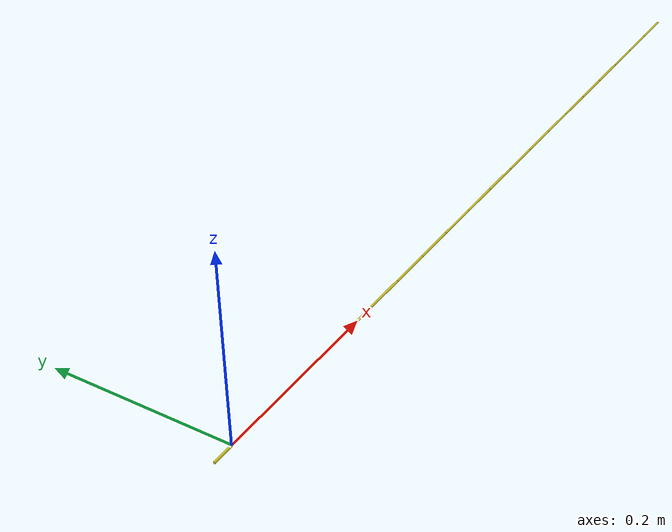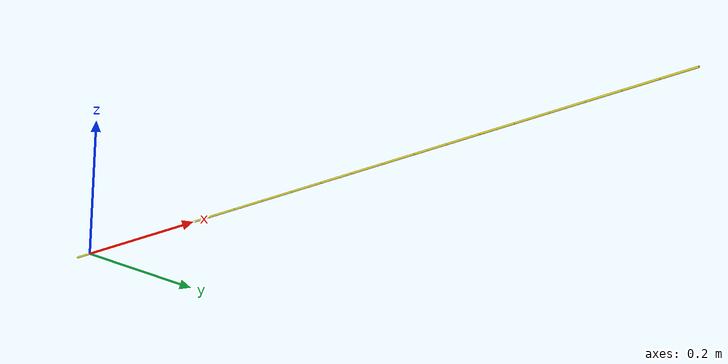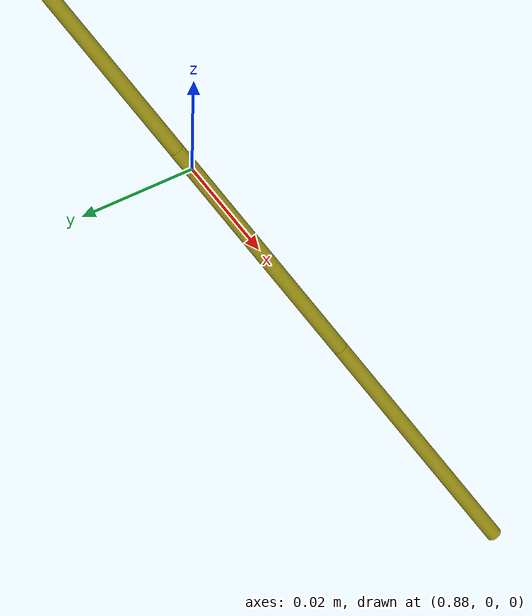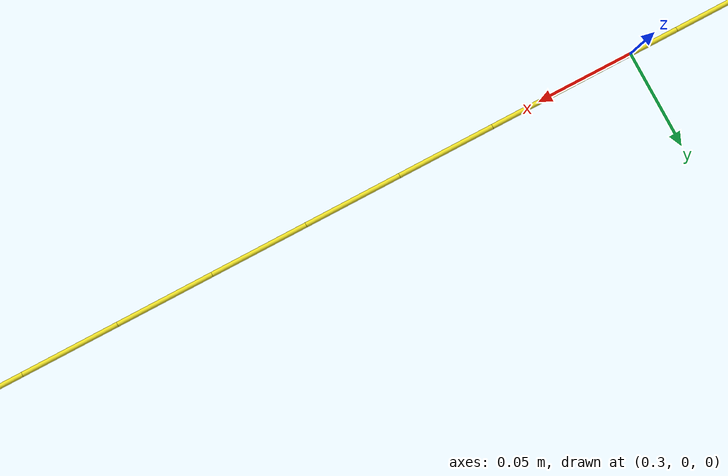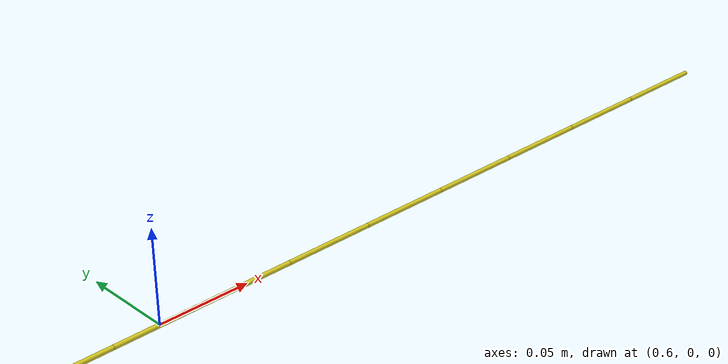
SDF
<?xml version="1.0" ?>
<sdf version="1.5">
<model name="sample">
<static> 0 </static>
<link name = "link_0" >
<pose>0.0	0.0	0.0	0.0	0.0	0.0	</pose>

      <inertial>
        <pose>0 0 0 0 -0 0</pose>
        <mass>0.005</mass>
        <inertia>
          <ixx>0.0001</ixx>
          <ixy>0.0</ixy>
          <ixz>0.0</ixz>
          <iyy>0.0001</iyy>
          <iyz>0.0</iyz>
          <izz>0.0001</izz>
        </inertia>
      </inertial>
      <visual name='link_0_vis'>
        <pose>0 0 0 0.0 1.57079 0</pose>
        <geometry>
          <cylinder>
            <length>0.05</length>
            <radius>0.00125</radius>
          </cylinder>
        </geometry>
        <material>
          <shader type='pixel'/>
          <script>
            <uri>file://media/materials/scripts/gazebo.material</uri>
            <name>Gazebo/Yellow</name>
          </script>
        </material>
        <transparency>0</transparency>
        <cast_shadows>1</cast_shadows>
      </visual>
      <collision name='link_0_collision'>
        <laser_retro>0</laser_retro>
        <max_contacts>10</max_contacts>
        <pose>0  0 0 0.0 1.57079 0</pose>
        <geometry>
          <cylinder>
            <length>0.05</length>
            <radius>0.00125</radius>
          </cylinder>
        </geometry>
      </collision>
    </link>
<link name = "link_1" >
<pose>0.05	0.0	0.0	0.0	0.0	0.0	</pose>

      <inertial>
        <pose>0 0 0 0 -0 0</pose>
        <mass>0.005</mass>
        <inertia>
          <ixx>0.0001</ixx>
          <ixy>0.0</ixy>
          <ixz>0.0</ixz>
          <iyy>0.0001</iyy>
          <iyz>0.0</iyz>
          <izz>0.0001</izz>
        </inertia>
      </inertial>
      <visual name='link_1_vis'>
        <pose>0 0 0 0.0 1.57079 0</pose>
        <geometry>
          <cylinder>
            <length>0.05</length>
            <radius>0.00125</radius>
          </cylinder>
        </geometry>
        <material>
          <shader type='pixel'/>
          <script>
            <uri>file://media/materials/scripts/gazebo.material</uri>
            <name>Gazebo/Yellow</name>
          </script>
        </material>
        <transparency>0</transparency>
        <cast_shadows>1</cast_shadows>
      </visual>
      <collision name='link_1_collision'>
        <laser_retro>0</laser_retro>
        <max_contacts>10</max_contacts>
        <pose>0  0 0 0.0 1.57079 0</pose>
        <geometry>
          <cylinder>
            <length>0.05</length>
            <radius>0.00125</radius>
          </cylinder>
        </geometry>
      </collision>
    </link>
<joint name='joint_0' type='universal'>
<parent>link_0</parent>
<child>link_1</child>
<pose>-0.025	0.0	0.0	0.0	0.0	0.0	</pose>
<axis>
        <xyz>0 1 0</xyz>
        <dynamics>
          <spring_reference>0</spring_reference>
          <spring_stiffness>0</spring_stiffness>
          <damping>0.01</damping>
          <friction>0</friction>
        </dynamics>
      </axis>
      <axis2>
        <xyz>0 0 1</xyz>
        <dynamics>
          <spring_reference>0</spring_reference>
          <spring_stiffness>0</spring_stiffness>
          <damping>0.01</damping>
          <friction>0</friction>
        </dynamics>
      </axis2>
      <physics>
        <ode>
          <limit>
            <cfm>0</cfm>
            <erp>0.2</erp>
          </limit>
          <suspension>
            <cfm>0</cfm>
            <erp>0.2</erp>
          </suspension>
        </ode>
      </physics>
    </joint>
<link name = "link_2" >
<pose>0.1	0.0	0.0	0.0	0.0	0.0	</pose>

      <inertial>
        <pose>0 0 0 0 -0 0</pose>
        <mass>0.005</mass>
        <inertia>
          <ixx>0.0001</ixx>
          <ixy>0.0</ixy>
          <ixz>0.0</ixz>
          <iyy>0.0001</iyy>
          <iyz>0.0</iyz>
          <izz>0.0001</izz>
        </inertia>
      </inertial>
      <visual name='link_2_vis'>
        <pose>0 0 0 0.0 1.57079 0</pose>
        <geometry>
          <cylinder>
            <length>0.05</length>
            <radius>0.00125</radius>
          </cylinder>
        </geometry>
        <material>
          <shader type='pixel'/>
          <script>
            <uri>file://media/materials/scripts/gazebo.material</uri>
            <name>Gazebo/Yellow</name>
          </script>
        </material>
        <transparency>0</transparency>
        <cast_shadows>1</cast_shadows>
      </visual>
      <collision name='link_2_collision'>
        <laser_retro>0</laser_retro>
        <max_contacts>10</max_contacts>
        <pose>0  0 0 0.0 1.57079 0</pose>
        <geometry>
          <cylinder>
            <length>0.05</length>
            <radius>0.00125</radius>
          </cylinder>
        </geometry>
      </collision>
    </link>
<joint name='joint_1' type='universal'>
<parent>link_1</parent>
<child>link_2</child>
<pose>-0.025	0.0	0.0	0.0	0.0	0.0	</pose>
<axis>
        <xyz>0 1 0</xyz>
        <dynamics>
          <spring_reference>0</spring_reference>
          <spring_stiffness>0</spring_stiffness>
          <damping>0.01</damping>
          <friction>0</friction>
        </dynamics>
      </axis>
      <axis2>
        <xyz>0 0 1</xyz>
        <dynamics>
          <spring_reference>0</spring_reference>
          <spring_stiffness>0</spring_stiffness>
          <damping>0.01</damping>
          <friction>0</friction>
        </dynamics>
      </axis2>
      <physics>
        <ode>
          <limit>
            <cfm>0</cfm>
            <erp>0.2</erp>
          </limit>
          <suspension>
            <cfm>0</cfm>
            <erp>0.2</erp>
          </suspension>
        </ode>
      </physics>
    </joint>
<link name = "link_3" >
<pose>0.15000000000000002	0.0	0.0	0.0	0.0	0.0	</pose>

      <inertial>
        <pose>0 0 0 0 -0 0</pose>
        <mass>0.005</mass>
        <inertia>
          <ixx>0.0001</ixx>
          <ixy>0.0</ixy>
          <ixz>0.0</ixz>
          <iyy>0.0001</iyy>
          <iyz>0.0</iyz>
          <izz>0.0001</izz>
        </inertia>
      </inertial>
      <visual name='link_3_vis'>
        <pose>0 0 0 0.0 1.57079 0</pose>
        <geometry>
          <cylinder>
            <length>0.05</length>
            <radius>0.00125</radius>
          </cylinder>
        </geometry>
        <material>
          <shader type='pixel'/>
          <script>
            <uri>file://media/materials/scripts/gazebo.material</uri>
            <name>Gazebo/Yellow</name>
          </script>
        </material>
        <transparency>0</transparency>
        <cast_shadows>1</cast_shadows>
      </visual>
      <collision name='link_3_collision'>
        <laser_retro>0</laser_retro>
        <max_contacts>10</max_contacts>
        <pose>0  0 0 0.0 1.57079 0</pose>
        <geometry>
          <cylinder>
            <length>0.05</length>
            <radius>0.00125</radius>
          </cylinder>
        </geometry>
      </collision>
    </link>
<joint name='joint_2' type='universal'>
<parent>link_2</parent>
<child>link_3</child>
<pose>-0.025	0.0	0.0	0.0	0.0	0.0	</pose>
<axis>
        <xyz>0 1 0</xyz>
        <dynamics>
          <spring_reference>0</spring_reference>
          <spring_stiffness>0</spring_stiffness>
          <damping>0.01</damping>
          <friction>0</friction>
        </dynamics>
      </axis>
      <axis2>
        <xyz>0 0 1</xyz>
        <dynamics>
          <spring_reference>0</spring_reference>
          <spring_stiffness>0</spring_stiffness>
          <damping>0.01</damping>
          <friction>0</friction>
        </dynamics>
      </axis2>
      <physics>
        <ode>
          <limit>
            <cfm>0</cfm>
            <erp>0.2</erp>
          </limit>
          <suspension>
            <cfm>0</cfm>
            <erp>0.2</erp>
          </suspension>
        </ode>
      </physics>
    </joint>
<link name = "link_4" >
<pose>0.2	0.0	0.0	0.0	0.0	0.0	</pose>

      <inertial>
        <pose>0 0 0 0 -0 0</pose>
        <mass>0.005</mass>
        <inertia>
          <ixx>0.0001</ixx>
          <ixy>0.0</ixy>
          <ixz>0.0</ixz>
          <iyy>0.0001</iyy>
          <iyz>0.0</iyz>
          <izz>0.0001</izz>
        </inertia>
      </inertial>
      <visual name='link_4_vis'>
        <pose>0 0 0 0.0 1.57079 0</pose>
        <geometry>
          <cylinder>
            <length>0.05</length>
            <radius>0.00125</radius>
          </cylinder>
        </geometry>
        <material>
          <shader type='pixel'/>
          <script>
            <uri>file://media/materials/scripts/gazebo.material</uri>
            <name>Gazebo/Yellow</name>
          </script>
        </material>
        <transparency>0</transparency>
        <cast_shadows>1</cast_shadows>
      </visual>
      <collision name='link_4_collision'>
        <laser_retro>0</laser_retro>
        <max_contacts>10</max_contacts>
        <pose>0  0 0 0.0 1.57079 0</pose>
        <geometry>
          <cylinder>
            <length>0.05</length>
            <radius>0.00125</radius>
          </cylinder>
        </geometry>
      </collision>
    </link>
<joint name='joint_3' type='universal'>
<parent>link_3</parent>
<child>link_4</child>
<pose>-0.025	0.0	0.0	0.0	0.0	0.0	</pose>
<axis>
        <xyz>0 1 0</xyz>
        <dynamics>
          <spring_reference>0</spring_reference>
          <spring_stiffness>0</spring_stiffness>
          <damping>0.01</damping>
          <friction>0</friction>
        </dynamics>
      </axis>
      <axis2>
        <xyz>0 0 1</xyz>
        <dynamics>
          <spring_reference>0</spring_reference>
          <spring_stiffness>0</spring_stiffness>
          <damping>0.01</damping>
          <friction>0</friction>
        </dynamics>
      </axis2>
      <physics>
        <ode>
          <limit>
            <cfm>0</cfm>
            <erp>0.2</erp>
          </limit>
          <suspension>
            <cfm>0</cfm>
            <erp>0.2</erp>
          </suspension>
        </ode>
      </physics>
    </joint>
<link name = "link_5" >
<pose>0.25	0.0	0.0	0.0	0.0	0.0	</pose>

      <inertial>
        <pose>0 0 0 0 -0 0</pose>
        <mass>0.005</mass>
        <inertia>
          <ixx>0.0001</ixx>
          <ixy>0.0</ixy>
          <ixz>0.0</ixz>
          <iyy>0.0001</iyy>
          <iyz>0.0</iyz>
          <izz>0.0001</izz>
        </inertia>
      </inertial>
      <visual name='link_5_vis'>
        <pose>0 0 0 0.0 1.57079 0</pose>
        <geometry>
          <cylinder>
            <length>0.05</length>
            <radius>0.00125</radius>
          </cylinder>
        </geometry>
        <material>
          <shader type='pixel'/>
          <script>
            <uri>file://media/materials/scripts/gazebo.material</uri>
            <name>Gazebo/Yellow</name>
          </script>
        </material>
        <transparency>0</transparency>
        <cast_shadows>1</cast_shadows>
      </visual>
      <collision name='link_5_collision'>
        <laser_retro>0</laser_retro>
        <max_contacts>10</max_contacts>
        <pose>0  0 0 0.0 1.57079 0</pose>
        <geometry>
          <cylinder>
            <length>0.05</length>
            <radius>0.00125</radius>
          </cylinder>
        </geometry>
      </collision>
    </link>
<joint name='joint_4' type='universal'>
<parent>link_4</parent>
<child>link_5</child>
<pose>-0.025	0.0	0.0	0.0	0.0	0.0	</pose>
<axis>
        <xyz>0 1 0</xyz>
        <dynamics>
          <spring_reference>0</spring_reference>
          <spring_stiffness>0</spring_stiffness>
          <damping>0.01</damping>
          <friction>0</friction>
        </dynamics>
      </axis>
      <axis2>
        <xyz>0 0 1</xyz>
        <dynamics>
          <spring_reference>0</spring_reference>
          <spring_stiffness>0</spring_stiffness>
          <damping>0.01</damping>
          <friction>0</friction>
        </dynamics>
      </axis2>
      <physics>
        <ode>
          <limit>
            <cfm>0</cfm>
            <erp>0.2</erp>
          </limit>
          <suspension>
            <cfm>0</cfm>
            <erp>0.2</erp>
          </suspension>
        </ode>
      </physics>
    </joint>
<link name = "link_6" >
<pose>0.30000000000000004	0.0	0.0	0.0	0.0	0.0	</pose>

      <inertial>
        <pose>0 0 0 0 -0 0</pose>
        <mass>0.005</mass>
        <inertia>
          <ixx>0.0001</ixx>
          <ixy>0.0</ixy>
          <ixz>0.0</ixz>
          <iyy>0.0001</iyy>
          <iyz>0.0</iyz>
          <izz>0.0001</izz>
        </inertia>
      </inertial>
      <visual name='link_6_vis'>
        <pose>0 0 0 0.0 1.57079 0</pose>
        <geometry>
          <cylinder>
            <length>0.05</length>
            <radius>0.00125</radius>
          </cylinder>
        </geometry>
        <material>
          <shader type='pixel'/>
          <script>
            <uri>file://media/materials/scripts/gazebo.material</uri>
            <name>Gazebo/Yellow</name>
          </script>
        </material>
        <transparency>0</transparency>
        <cast_shadows>1</cast_shadows>
      </visual>
      <collision name='link_6_collision'>
        <laser_retro>0</laser_retro>
        <max_contacts>10</max_contacts>
        <pose>0  0 0 0.0 1.57079 0</pose>
        <geometry>
          <cylinder>
            <length>0.05</length>
            <radius>0.00125</radius>
          </cylinder>
        </geometry>
      </collision>
    </link>
<joint name='joint_5' type='universal'>
<parent>link_5</parent>
<child>link_6</child>
<pose>-0.025	0.0	0.0	0.0	0.0	0.0	</pose>
<axis>
        <xyz>0 1 0</xyz>
        <dynamics>
          <spring_reference>0</spring_reference>
          <spring_stiffness>0</spring_stiffness>
          <damping>0.01</damping>
          <friction>0</friction>
        </dynamics>
      </axis>
      <axis2>
        <xyz>0 0 1</xyz>
        <dynamics>
          <spring_reference>0</spring_reference>
          <spring_stiffness>0</spring_stiffness>
          <damping>0.01</damping>
          <friction>0</friction>
        </dynamics>
      </axis2>
      <physics>
        <ode>
          <limit>
            <cfm>0</cfm>
            <erp>0.2</erp>
          </limit>
          <suspension>
            <cfm>0</cfm>
            <erp>0.2</erp>
          </suspension>
        </ode>
      </physics>
    </joint>
<link name = "link_7" >
<pose>0.35000000000000003	0.0	0.0	0.0	0.0	0.0	</pose>

      <inertial>
        <pose>0 0 0 0 -0 0</pose>
        <mass>0.005</mass>
        <inertia>
          <ixx>0.0001</ixx>
          <ixy>0.0</ixy>
          <ixz>0.0</ixz>
          <iyy>0.0001</iyy>
          <iyz>0.0</iyz>
          <izz>0.0001</izz>
        </inertia>
      </inertial>
      <visual name='link_7_vis'>
        <pose>0 0 0 0.0 1.57079 0</pose>
        <geometry>
          <cylinder>
            <length>0.05</length>
            <radius>0.00125</radius>
          </cylinder>
        </geometry>
        <material>
          <shader type='pixel'/>
          <script>
            <uri>file://media/materials/scripts/gazebo.material</uri>
            <name>Gazebo/Yellow</name>
          </script>
        </material>
        <transparency>0</transparency>
        <cast_shadows>1</cast_shadows>
      </visual>
      <collision name='link_7_collision'>
        <laser_retro>0</laser_retro>
        <max_contacts>10</max_contacts>
        <pose>0  0 0 0.0 1.57079 0</pose>
        <geometry>
          <cylinder>
            <length>0.05</length>
            <radius>0.00125</radius>
          </cylinder>
        </geometry>
      </collision>
    </link>
<joint name='joint_6' type='universal'>
<parent>link_6</parent>
<child>link_7</child>
<pose>-0.025	0.0	0.0	0.0	0.0	0.0	</pose>
<axis>
        <xyz>0 1 0</xyz>
        <dynamics>
          <spring_reference>0</spring_reference>
          <spring_stiffness>0</spring_stiffness>
          <damping>0.01</damping>
          <friction>0</friction>
        </dynamics>
      </axis>
      <axis2>
        <xyz>0 0 1</xyz>
        <dynamics>
          <spring_reference>0</spring_reference>
          <spring_stiffness>0</spring_stiffness>
          <damping>0.01</damping>
          <friction>0</friction>
        </dynamics>
      </axis2>
      <physics>
        <ode>
          <limit>
            <cfm>0</cfm>
            <erp>0.2</erp>
          </limit>
          <suspension>
            <cfm>0</cfm>
            <erp>0.2</erp>
          </suspension>
        </ode>
      </physics>
    </joint>
<link name = "link_8" >
<pose>0.4	0.0	0.0	0.0	0.0	0.0	</pose>

      <inertial>
        <pose>0 0 0 0 -0 0</pose>
        <mass>0.005</mass>
        <inertia>
          <ixx>0.0001</ixx>
          <ixy>0.0</ixy>
          <ixz>0.0</ixz>
          <iyy>0.0001</iyy>
          <iyz>0.0</iyz>
          <izz>0.0001</izz>
        </inertia>
      </inertial>
      <visual name='link_8_vis'>
        <pose>0 0 0 0.0 1.57079 0</pose>
        <geometry>
          <cylinder>
            <length>0.05</length>
            <radius>0.00125</radius>
          </cylinder>
        </geometry>
        <material>
          <shader type='pixel'/>
          <script>
            <uri>file://media/materials/scripts/gazebo.material</uri>
            <name>Gazebo/Yellow</name>
          </script>
        </material>
        <transparency>0</transparency>
        <cast_shadows>1</cast_shadows>
      </visual>
      <collision name='link_8_collision'>
        <laser_retro>0</laser_retro>
        <max_contacts>10</max_contacts>
        <pose>0  0 0 0.0 1.57079 0</pose>
        <geometry>
          <cylinder>
            <length>0.05</length>
            <radius>0.00125</radius>
          </cylinder>
        </geometry>
      </collision>
    </link>
<joint name='joint_7' type='universal'>
<parent>link_7</parent>
<child>link_8</child>
<pose>-0.025	0.0	0.0	0.0	0.0	0.0	</pose>
<axis>
        <xyz>0 1 0</xyz>
        <dynamics>
          <spring_reference>0</spring_reference>
          <spring_stiffness>0</spring_stiffness>
          <damping>0.01</damping>
          <friction>0</friction>
        </dynamics>
      </axis>
      <axis2>
        <xyz>0 0 1</xyz>
        <dynamics>
          <spring_reference>0</spring_reference>
          <spring_stiffness>0</spring_stiffness>
          <damping>0.01</damping>
          <friction>0</friction>
        </dynamics>
      </axis2>
      <physics>
        <ode>
          <limit>
            <cfm>0</cfm>
            <erp>0.2</erp>
          </limit>
          <suspension>
            <cfm>0</cfm>
            <erp>0.2</erp>
          </suspension>
        </ode>
      </physics>
    </joint>
<link name = "link_9" >
<pose>0.45	0.0	0.0	0.0	0.0	0.0	</pose>

      <inertial>
        <pose>0 0 0 0 -0 0</pose>
        <mass>0.005</mass>
        <inertia>
          <ixx>0.0001</ixx>
          <ixy>0.0</ixy>
          <ixz>0.0</ixz>
          <iyy>0.0001</iyy>
          <iyz>0.0</iyz>
          <izz>0.0001</izz>
        </inertia>
      </inertial>
      <visual name='link_9_vis'>
        <pose>0 0 0 0.0 1.57079 0</pose>
        <geometry>
          <cylinder>
            <length>0.05</length>
            <radius>0.00125</radius>
          </cylinder>
        </geometry>
        <material>
          <shader type='pixel'/>
          <script>
            <uri>file://media/materials/scripts/gazebo.material</uri>
            <name>Gazebo/Yellow</name>
          </script>
        </material>
        <transparency>0</transparency>
        <cast_shadows>1</cast_shadows>
      </visual>
      <collision name='link_9_collision'>
        <laser_retro>0</laser_retro>
        <max_contacts>10</max_contacts>
        <pose>0  0 0 0.0 1.57079 0</pose>
        <geometry>
          <cylinder>
            <length>0.05</length>
            <radius>0.00125</radius>
          </cylinder>
        </geometry>
      </collision>
    </link>
<joint name='joint_8' type='universal'>
<parent>link_8</parent>
<child>link_9</child>
<pose>-0.025	0.0	0.0	0.0	0.0	0.0	</pose>
<axis>
        <xyz>0 1 0</xyz>
        <dynamics>
          <spring_reference>0</spring_reference>
          <spring_stiffness>0</spring_stiffness>
          <damping>0.01</damping>
          <friction>0</friction>
        </dynamics>
      </axis>
      <axis2>
        <xyz>0 0 1</xyz>
        <dynamics>
          <spring_reference>0</spring_reference>
          <spring_stiffness>0</spring_stiffness>
          <damping>0.01</damping>
          <friction>0</friction>
        </dynamics>
      </axis2>
      <physics>
        <ode>
          <limit>
            <cfm>0</cfm>
            <erp>0.2</erp>
          </limit>
          <suspension>
            <cfm>0</cfm>
            <erp>0.2</erp>
          </suspension>
        </ode>
      </physics>
    </joint>
<link name = "link_10" >
<pose>0.5	0.0	0.0	0.0	0.0	0.0	</pose>

      <inertial>
        <pose>0 0 0 0 -0 0</pose>
        <mass>0.005</mass>
        <inertia>
          <ixx>0.0001</ixx>
          <ixy>0.0</ixy>
          <ixz>0.0</ixz>
          <iyy>0.0001</iyy>
          <iyz>0.0</iyz>
          <izz>0.0001</izz>
        </inertia>
      </inertial>
      <visual name='link_10_vis'>
        <pose>0 0 0 0.0 1.57079 0</pose>
        <geometry>
          <cylinder>
            <length>0.05</length>
            <radius>0.00125</radius>
          </cylinder>
        </geometry>
        <material>
          <shader type='pixel'/>
          <script>
            <uri>file://media/materials/scripts/gazebo.material</uri>
            <name>Gazebo/Yellow</name>
          </script>
        </material>
        <transparency>0</transparency>
        <cast_shadows>1</cast_shadows>
      </visual>
      <collision name='link_10_collision'>
        <laser_retro>0</laser_retro>
        <max_contacts>10</max_contacts>
        <pose>0  0 0 0.0 1.57079 0</pose>
        <geometry>
          <cylinder>
            <length>0.05</length>
            <radius>0.00125</radius>
          </cylinder>
        </geometry>
      </collision>
    </link>
<joint name='joint_9' type='universal'>
<parent>link_9</parent>
<child>link_10</child>
<pose>-0.025	0.0	0.0	0.0	0.0	0.0	</pose>
<axis>
        <xyz>0 1 0</xyz>
        <dynamics>
          <spring_reference>0</spring_reference>
          <spring_stiffness>0</spring_stiffness>
          <damping>0.01</damping>
          <friction>0</friction>
        </dynamics>
      </axis>
      <axis2>
        <xyz>0 0 1</xyz>
        <dynamics>
          <spring_reference>0</spring_reference>
          <spring_stiffness>0</spring_stiffness>
          <damping>0.01</damping>
          <friction>0</friction>
        </dynamics>
      </axis2>
      <physics>
        <ode>
          <limit>
            <cfm>0</cfm>
            <erp>0.2</erp>
          </limit>
          <suspension>
            <cfm>0</cfm>
            <erp>0.2</erp>
          </suspension>
        </ode>
      </physics>
    </joint>
<link name = "link_11" >
<pose>0.55	0.0	0.0	0.0	0.0	0.0	</pose>

      <inertial>
        <pose>0 0 0 0 -0 0</pose>
        <mass>0.005</mass>
        <inertia>
          <ixx>0.0001</ixx>
          <ixy>0.0</ixy>
          <ixz>0.0</ixz>
          <iyy>0.0001</iyy>
          <iyz>0.0</iyz>
          <izz>0.0001</izz>
        </inertia>
      </inertial>
      <visual name='link_11_vis'>
        <pose>0 0 0 0.0 1.57079 0</pose>
        <geometry>
          <cylinder>
            <length>0.05</length>
            <radius>0.00125</radius>
          </cylinder>
        </geometry>
        <material>
          <shader type='pixel'/>
          <script>
            <uri>file://media/materials/scripts/gazebo.material</uri>
            <name>Gazebo/Yellow</name>
          </script>
        </material>
        <transparency>0</transparency>
        <cast_shadows>1</cast_shadows>
      </visual>
      <collision name='link_11_collision'>
        <laser_retro>0</laser_retro>
        <max_contacts>10</max_contacts>
        <pose>0  0 0 0.0 1.57079 0</pose>
        <geometry>
          <cylinder>
            <length>0.05</length>
            <radius>0.00125</radius>
          </cylinder>
        </geometry>
      </collision>
    </link>
<joint name='joint_10' type='universal'>
<parent>link_10</parent>
<child>link_11</child>
<pose>-0.025	0.0	0.0	0.0	0.0	0.0	</pose>
<axis>
        <xyz>0 1 0</xyz>
        <dynamics>
          <spring_reference>0</spring_reference>
          <spring_stiffness>0</spring_stiffness>
          <damping>0.01</damping>
          <friction>0</friction>
        </dynamics>
      </axis>
      <axis2>
        <xyz>0 0 1</xyz>
        <dynamics>
          <spring_reference>0</spring_reference>
          <spring_stiffness>0</spring_stiffness>
          <damping>0.01</damping>
          <friction>0</friction>
        </dynamics>
      </axis2>
      <physics>
        <ode>
          <limit>
            <cfm>0</cfm>
            <erp>0.2</erp>
          </limit>
          <suspension>
            <cfm>0</cfm>
            <erp>0.2</erp>
          </suspension>
        </ode>
      </physics>
    </joint>
<link name = "link_12" >
<pose>0.6000000000000001	0.0	0.0	0.0	0.0	0.0	</pose>

      <inertial>
        <pose>0 0 0 0 -0 0</pose>
        <mass>0.005</mass>
        <inertia>
          <ixx>0.0001</ixx>
          <ixy>0.0</ixy>
          <ixz>0.0</ixz>
          <iyy>0.0001</iyy>
          <iyz>0.0</iyz>
          <izz>0.0001</izz>
        </inertia>
      </inertial>
      <visual name='link_12_vis'>
        <pose>0 0 0 0.0 1.57079 0</pose>
        <geometry>
          <cylinder>
            <length>0.05</length>
            <radius>0.00125</radius>
          </cylinder>
        </geometry>
        <material>
          <shader type='pixel'/>
          <script>
            <uri>file://media/materials/scripts/gazebo.material</uri>
            <name>Gazebo/Yellow</name>
          </script>
        </material>
        <transparency>0</transparency>
        <cast_shadows>1</cast_shadows>
      </visual>
      <collision name='link_12_collision'>
        <laser_retro>0</laser_retro>
        <max_contacts>10</max_contacts>
        <pose>0  0 0 0.0 1.57079 0</pose>
        <geometry>
          <cylinder>
            <length>0.05</length>
            <radius>0.00125</radius>
          </cylinder>
        </geometry>
      </collision>
    </link>
<joint name='joint_11' type='universal'>
<parent>link_11</parent>
<child>link_12</child>
<pose>-0.025	0.0	0.0	0.0	0.0	0.0	</pose>
<axis>
        <xyz>0 1 0</xyz>
        <dynamics>
          <spring_reference>0</spring_reference>
          <spring_stiffness>0</spring_stiffness>
          <damping>0.01</damping>
          <friction>0</friction>
        </dynamics>
      </axis>
      <axis2>
        <xyz>0 0 1</xyz>
        <dynamics>
          <spring_reference>0</spring_reference>
          <spring_stiffness>0</spring_stiffness>
          <damping>0.01</damping>
          <friction>0</friction>
        </dynamics>
      </axis2>
      <physics>
        <ode>
          <limit>
            <cfm>0</cfm>
            <erp>0.2</erp>
          </limit>
          <suspension>
            <cfm>0</cfm>
            <erp>0.2</erp>
          </suspension>
        </ode>
      </physics>
    </joint>
<link name = "link_13" >
<pose>0.65	0.0	0.0	0.0	0.0	0.0	</pose>

      <inertial>
        <pose>0 0 0 0 -0 0</pose>
        <mass>0.005</mass>
        <inertia>
          <ixx>0.0001</ixx>
          <ixy>0.0</ixy>
          <ixz>0.0</ixz>
          <iyy>0.0001</iyy>
          <iyz>0.0</iyz>
          <izz>0.0001</izz>
        </inertia>
      </inertial>
      <visual name='link_13_vis'>
        <pose>0 0 0 0.0 1.57079 0</pose>
        <geometry>
          <cylinder>
            <length>0.05</length>
            <radius>0.00125</radius>
          </cylinder>
        </geometry>
        <material>
          <shader type='pixel'/>
          <script>
            <uri>file://media/materials/scripts/gazebo.material</uri>
            <name>Gazebo/Yellow</name>
          </script>
        </material>
        <transparency>0</transparency>
        <cast_shadows>1</cast_shadows>
      </visual>
      <collision name='link_13_collision'>
        <laser_retro>0</laser_retro>
        <max_contacts>10</max_contacts>
        <pose>0  0 0 0.0 1.57079 0</pose>
        <geometry>
          <cylinder>
            <length>0.05</length>
            <radius>0.00125</radius>
          </cylinder>
        </geometry>
      </collision>
    </link>
<joint name='joint_12' type='universal'>
<parent>link_12</parent>
<child>link_13</child>
<pose>-0.025	0.0	0.0	0.0	0.0	0.0	</pose>
<axis>
        <xyz>0 1 0</xyz>
        <dynamics>
          <spring_reference>0</spring_reference>
          <spring_stiffness>0</spring_stiffness>
          <damping>0.01</damping>
          <friction>0</friction>
        </dynamics>
      </axis>
      <axis2>
        <xyz>0 0 1</xyz>
        <dynamics>
          <spring_reference>0</spring_reference>
          <spring_stiffness>0</spring_stiffness>
          <damping>0.01</damping>
          <friction>0</friction>
        </dynamics>
      </axis2>
      <physics>
        <ode>
          <limit>
            <cfm>0</cfm>
            <erp>0.2</erp>
          </limit>
          <suspension>
            <cfm>0</cfm>
            <erp>0.2</erp>
          </suspension>
        </ode>
      </physics>
    </joint>
<link name = "link_14" >
<pose>0.7000000000000001	0.0	0.0	0.0	0.0	0.0	</pose>

      <inertial>
        <pose>0 0 0 0 -0 0</pose>
        <mass>0.005</mass>
        <inertia>
          <ixx>0.0001</ixx>
          <ixy>0.0</ixy>
          <ixz>0.0</ixz>
          <iyy>0.0001</iyy>
          <iyz>0.0</iyz>
          <izz>0.0001</izz>
        </inertia>
      </inertial>
      <visual name='link_14_vis'>
        <pose>0 0 0 0.0 1.57079 0</pose>
        <geometry>
          <cylinder>
            <length>0.05</length>
            <radius>0.00125</radius>
          </cylinder>
        </geometry>
        <material>
          <shader type='pixel'/>
          <script>
            <uri>file://media/materials/scripts/gazebo.material</uri>
            <name>Gazebo/Yellow</name>
          </script>
        </material>
        <transparency>0</transparency>
        <cast_shadows>1</cast_shadows>
      </visual>
      <collision name='link_14_collision'>
        <laser_retro>0</laser_retro>
        <max_contacts>10</max_contacts>
        <pose>0  0 0 0.0 1.57079 0</pose>
        <geometry>
          <cylinder>
            <length>0.05</length>
            <radius>0.00125</radius>
          </cylinder>
        </geometry>
      </collision>
    </link>
<joint name='joint_13' type='universal'>
<parent>link_13</parent>
<child>link_14</child>
<pose>-0.025	0.0	0.0	0.0	0.0	0.0	</pose>
<axis>
        <xyz>0 1 0</xyz>
        <dynamics>
          <spring_reference>0</spring_reference>
          <spring_stiffness>0</spring_stiffness>
          <damping>0.01</damping>
          <friction>0</friction>
        </dynamics>
      </axis>
      <axis2>
        <xyz>0 0 1</xyz>
        <dynamics>
          <spring_reference>0</spring_reference>
          <spring_stiffness>0</spring_stiffness>
          <damping>0.01</damping>
          <friction>0</friction>
        </dynamics>
      </axis2>
      <physics>
        <ode>
          <limit>
            <cfm>0</cfm>
            <erp>0.2</erp>
          </limit>
          <suspension>
            <cfm>0</cfm>
            <erp>0.2</erp>
          </suspension>
        </ode>
      </physics>
    </joint>
<link name = "link_15" >
<pose>0.75	0.0	0.0	0.0	0.0	0.0	</pose>

      <inertial>
        <pose>0 0 0 0 -0 0</pose>
        <mass>0.005</mass>
        <inertia>
          <ixx>0.0001</ixx>
          <ixy>0.0</ixy>
          <ixz>0.0</ixz>
          <iyy>0.0001</iyy>
          <iyz>0.0</iyz>
          <izz>0.0001</izz>
        </inertia>
      </inertial>
      <visual name='link_15_vis'>
        <pose>0 0 0 0.0 1.57079 0</pose>
        <geometry>
          <cylinder>
            <length>0.05</length>
            <radius>0.00125</radius>
          </cylinder>
        </geometry>
        <material>
          <shader type='pixel'/>
          <script>
            <uri>file://media/materials/scripts/gazebo.material</uri>
            <name>Gazebo/Yellow</name>
          </script>
        </material>
        <transparency>0</transparency>
        <cast_shadows>1</cast_shadows>
      </visual>
      <collision name='link_15_collision'>
        <laser_retro>0</laser_retro>
        <max_contacts>10</max_contacts>
        <pose>0  0 0 0.0 1.57079 0</pose>
        <geometry>
          <cylinder>
            <length>0.05</length>
            <radius>0.00125</radius>
          </cylinder>
        </geometry>
      </collision>
    </link>
<joint name='joint_14' type='universal'>
<parent>link_14</parent>
<child>link_15</child>
<pose>-0.025	0.0	0.0	0.0	0.0	0.0	</pose>
<axis>
        <xyz>0 1 0</xyz>
        <dynamics>
          <spring_reference>0</spring_reference>
          <spring_stiffness>0</spring_stiffness>
          <damping>0.01</damping>
          <friction>0</friction>
        </dynamics>
      </axis>
      <axis2>
        <xyz>0 0 1</xyz>
        <dynamics>
          <spring_reference>0</spring_reference>
          <spring_stiffness>0</spring_stiffness>
          <damping>0.01</damping>
          <friction>0</friction>
        </dynamics>
      </axis2>
      <physics>
        <ode>
          <limit>
            <cfm>0</cfm>
            <erp>0.2</erp>
          </limit>
          <suspension>
            <cfm>0</cfm>
            <erp>0.2</erp>
          </suspension>
        </ode>
      </physics>
    </joint>
<link name = "link_16" >
<pose>0.8	0.0	0.0	0.0	0.0	0.0	</pose>

      <inertial>
        <pose>0 0 0 0 -0 0</pose>
        <mass>0.005</mass>
        <inertia>
          <ixx>0.0001</ixx>
          <ixy>0.0</ixy>
          <ixz>0.0</ixz>
          <iyy>0.0001</iyy>
          <iyz>0.0</iyz>
          <izz>0.0001</izz>
        </inertia>
      </inertial>
      <visual name='link_16_vis'>
        <pose>0 0 0 0.0 1.57079 0</pose>
        <geometry>
          <cylinder>
            <length>0.05</length>
            <radius>0.00125</radius>
          </cylinder>
        </geometry>
        <material>
          <shader type='pixel'/>
          <script>
            <uri>file://media/materials/scripts/gazebo.material</uri>
            <name>Gazebo/Yellow</name>
          </script>
        </material>
        <transparency>0</transparency>
        <cast_shadows>1</cast_shadows>
      </visual>
      <collision name='link_16_collision'>
        <laser_retro>0</laser_retro>
        <max_contacts>10</max_contacts>
        <pose>0  0 0 0.0 1.57079 0</pose>
        <geometry>
          <cylinder>
            <length>0.05</length>
            <radius>0.00125</radius>
          </cylinder>
        </geometry>
      </collision>
    </link>
<joint name='joint_15' type='universal'>
<parent>link_15</parent>
<child>link_16</child>
<pose>-0.025	0.0	0.0	0.0	0.0	0.0	</pose>
<axis>
        <xyz>0 1 0</xyz>
        <dynamics>
          <spring_reference>0</spring_reference>
          <spring_stiffness>0</spring_stiffness>
          <damping>0.01</damping>
          <friction>0</friction>
        </dynamics>
      </axis>
      <axis2>
        <xyz>0 0 1</xyz>
        <dynamics>
          <spring_reference>0</spring_reference>
          <spring_stiffness>0</spring_stiffness>
          <damping>0.01</damping>
          <friction>0</friction>
        </dynamics>
      </axis2>
      <physics>
        <ode>
          <limit>
            <cfm>0</cfm>
            <erp>0.2</erp>
          </limit>
          <suspension>
            <cfm>0</cfm>
            <erp>0.2</erp>
          </suspension>
        </ode>
      </physics>
    </joint>
<link name = "link_17" >
<pose>0.8500000000000001	0.0	0.0	0.0	0.0	0.0	</pose>

      <inertial>
        <pose>0 0 0 0 -0 0</pose>
        <mass>0.005</mass>
        <inertia>
          <ixx>0.0001</ixx>
          <ixy>0.0</ixy>
          <ixz>0.0</ixz>
          <iyy>0.0001</iyy>
          <iyz>0.0</iyz>
          <izz>0.0001</izz>
        </inertia>
      </inertial>
      <visual name='link_17_vis'>
        <pose>0 0 0 0.0 1.57079 0</pose>
        <geometry>
          <cylinder>
            <length>0.05</length>
            <radius>0.00125</radius>
          </cylinder>
        </geometry>
        <material>
          <shader type='pixel'/>
          <script>
            <uri>file://media/materials/scripts/gazebo.material</uri>
            <name>Gazebo/Yellow</name>
          </script>
        </material>
        <transparency>0</transparency>
        <cast_shadows>1</cast_shadows>
      </visual>
      <collision name='link_17_collision'>
        <laser_retro>0</laser_retro>
        <max_contacts>10</max_contacts>
        <pose>0  0 0 0.0 1.57079 0</pose>
        <geometry>
          <cylinder>
            <length>0.05</length>
            <radius>0.00125</radius>
          </cylinder>
        </geometry>
      </collision>
    </link>
<joint name='joint_16' type='universal'>
<parent>link_16</parent>
<child>link_17</child>
<pose>-0.025	0.0	0.0	0.0	0.0	0.0	</pose>
<axis>
        <xyz>0 1 0</xyz>
        <dynamics>
          <spring_reference>0</spring_reference>
          <spring_stiffness>0</spring_stiffness>
          <damping>0.01</damping>
          <friction>0</friction>
        </dynamics>
      </axis>
      <axis2>
        <xyz>0 0 1</xyz>
        <dynamics>
          <spring_reference>0</spring_reference>
          <spring_stiffness>0</spring_stiffness>
          <damping>0.01</damping>
          <friction>0</friction>
        </dynamics>
      </axis2>
      <physics>
        <ode>
          <limit>
            <cfm>0</cfm>
            <erp>0.2</erp>
          </limit>
          <suspension>
            <cfm>0</cfm>
            <erp>0.2</erp>
          </suspension>
        </ode>
      </physics>
    </joint>
<link name = "link_18" >
<pose>0.9	0.0	0.0	0.0	0.0	0.0	</pose>

      <inertial>
        <pose>0 0 0 0 -0 0</pose>
        <mass>0.005</mass>
        <inertia>
          <ixx>0.0001</ixx>
          <ixy>0.0</ixy>
          <ixz>0.0</ixz>
          <iyy>0.0001</iyy>
          <iyz>0.0</iyz>
          <izz>0.0001</izz>
        </inertia>
      </inertial>
      <visual name='link_18_vis'>
        <pose>0 0 0 0.0 1.57079 0</pose>
        <geometry>
          <cylinder>
            <length>0.05</length>
            <radius>0.00125</radius>
          </cylinder>
        </geometry>
        <material>
          <shader type='pixel'/>
          <script>
            <uri>file://media/materials/scripts/gazebo.material</uri>
            <name>Gazebo/Yellow</name>
          </script>
        </material>
        <transparency>0</transparency>
        <cast_shadows>1</cast_shadows>
      </visual>
      <collision name='link_18_collision'>
        <laser_retro>0</laser_retro>
        <max_contacts>10</max_contacts>
        <pose>0  0 0 0.0 1.57079 0</pose>
        <geometry>
          <cylinder>
            <length>0.05</length>
            <radius>0.00125</radius>
          </cylinder>
        </geometry>
      </collision>
    </link>
<joint name='joint_17' type='universal'>
<parent>link_17</parent>
<child>link_18</child>
<pose>-0.025	0.0	0.0	0.0	0.0	0.0	</pose>
<axis>
        <xyz>0 1 0</xyz>
        <dynamics>
          <spring_reference>0</spring_reference>
          <spring_stiffness>0</spring_stiffness>
          <damping>0.01</damping>
          <friction>0</friction>
        </dynamics>
      </axis>
      <axis2>
        <xyz>0 0 1</xyz>
        <dynamics>
          <spring_reference>0</spring_reference>
          <spring_stiffness>0</spring_stiffness>
          <damping>0.01</damping>
          <friction>0</friction>
        </dynamics>
      </axis2>
      <physics>
        <ode>
          <limit>
            <cfm>0</cfm>
            <erp>0.2</erp>
          </limit>
          <suspension>
            <cfm>0</cfm>
            <erp>0.2</erp>
          </suspension>
        </ode>
      </physics>
    </joint>
<link name = "link_19" >
<pose>0.9500000000000001	0.0	0.0	0.0	0.0	0.0	</pose>

      <inertial>
        <pose>0 0 0 0 -0 0</pose>
        <mass>0.005</mass>
        <inertia>
          <ixx>0.0001</ixx>
          <ixy>0.0</ixy>
          <ixz>0.0</ixz>
          <iyy>0.0001</iyy>
          <iyz>0.0</iyz>
          <izz>0.0001</izz>
        </inertia>
      </inertial>
      <visual name='link_19_vis'>
        <pose>0 0 0 0.0 1.57079 0</pose>
        <geometry>
          <cylinder>
            <length>0.05</length>
            <radius>0.00125</radius>
          </cylinder>
        </geometry>
        <material>
          <shader type='pixel'/>
          <script>
            <uri>file://media/materials/scripts/gazebo.material</uri>
            <name>Gazebo/Yellow</name>
          </script>
        </material>
        <transparency>0</transparency>
        <cast_shadows>1</cast_shadows>
      </visual>
      <collision name='link_19_collision'>
        <laser_retro>0</laser_retro>
        <max_contacts>10</max_contacts>
        <pose>0  0 0 0.0 1.57079 0</pose>
        <geometry>
          <cylinder>
            <length>0.05</length>
            <radius>0.00125</radius>
          </cylinder>
        </geometry>
      </collision>
    </link>
<joint name='joint_18' type='universal'>
<parent>link_18</parent>
<child>link_19</child>
<pose>-0.025	0.0	0.0	0.0	0.0	0.0	</pose>
<axis>
        <xyz>0 1 0</xyz>
        <dynamics>
          <spring_reference>0</spring_reference>
          <spring_stiffness>0</spring_stiffness>
          <damping>0.01</damping>
          <friction>0</friction>
        </dynamics>
      </axis>
      <axis2>
        <xyz>0 0 1</xyz>
        <dynamics>
          <spring_reference>0</spring_reference>
          <spring_stiffness>0</spring_stiffness>
          <damping>0.01</damping>
          <friction>0</friction>
        </dynamics>
      </axis2>
      <physics>
        <ode>
          <limit>
            <cfm>0</cfm>
            <erp>0.2</erp>
          </limit>
          <suspension>
            <cfm>0</cfm>
            <erp>0.2</erp>
          </suspension>
        </ode>
      </physics>
    </joint>
</model>
</sdf>
